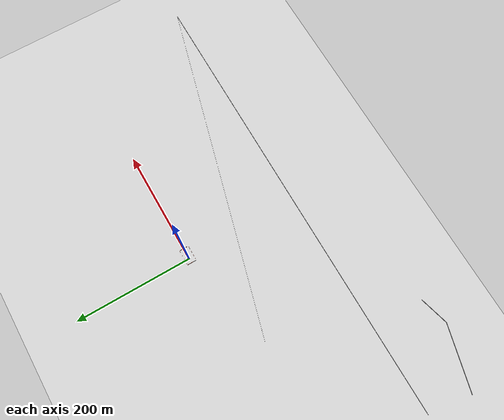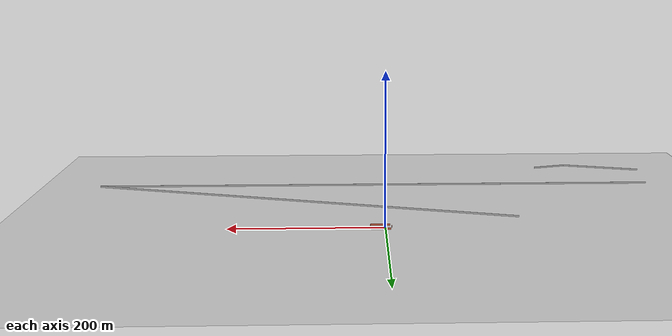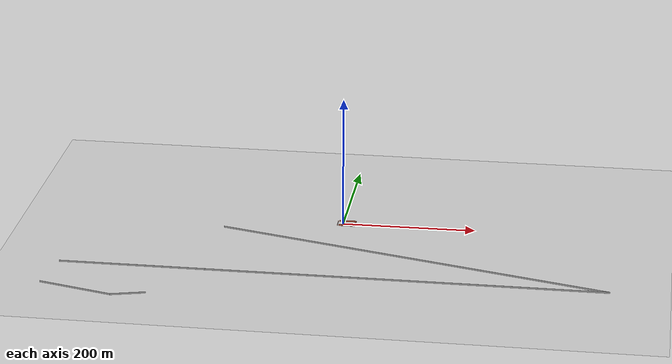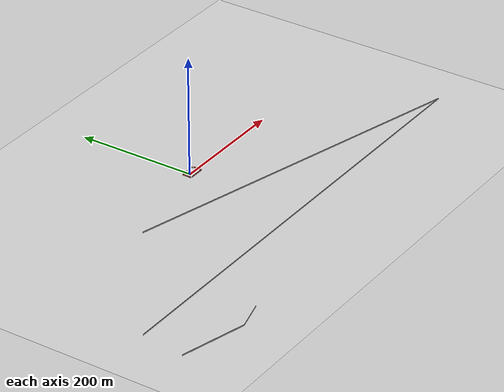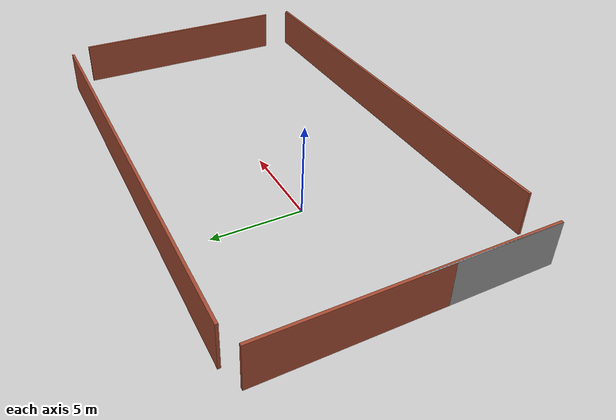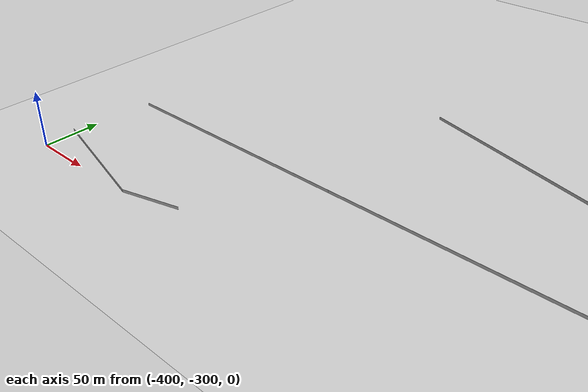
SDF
<sdf version="1.6">
 <world name="default">
  <light name="sun" type="directional">
   <pose>0 0 10 0 -0 0</pose>
   <diffuse>0.8 0.8 0.8 1</diffuse>
   <specular>0.2 0.2 0.2 1</specular>
   <attenuation>
    <range>1000</range>
    <constant>0.9</constant>
    <linear>0.01</linear>
    <quadratic>0.001</quadratic>
   </attenuation>
   <direction>-0.5 0.1 -0.9</direction>
  </light>
  <model name="ground_plane">
   <static>1</static>
   <link name="link">
    <collision name="collision">
     <geometry><plane><normal>0 0 1</normal><size>100 100</size></plane></geometry>
     <surface>
      <contact><collide_bitmask>65535</collide_bitmask></contact>
      <friction><ode><mu>100</mu><mu2>50</mu2></ode></friction>
     </surface>
    </collision>
    <visual name="visual">
     <cast_shadows>0</cast_shadows>
     <geometry><plane><normal>0 0 1</normal><size>100 100</size></plane></geometry>
     <material>
      <script><uri>file://media/materials/scripts/gazebo.material</uri><name>Gazebo/Grey</name></script>
     </material>
    </visual>
   </link>
  </model>
  <gravity>0 0 -9.8</gravity>
  <magnetic_field>6e-06 2.3e-05 -4.2e-05</magnetic_field>
  <atmosphere type="adiabatic"/>
  <physics name="default_physics" default="0" type="ode">
   <max_step_size>0.001</max_step_size>
   <real_time_factor>1</real_time_factor>
   <real_time_update_rate>1000</real_time_update_rate>
  </physics>
  <scene><ambient>0.4 0.4 0.4 1</ambient><background>0.7 0.7 0.7 1</background><shadows>1</shadows></scene>
  <spherical_coordinates>
   <surface_model>EARTH_WGS84</surface_model>
   <latitude_deg>0</latitude_deg>
   <longitude_deg>0</longitude_deg>
   <elevation>0</elevation>
   <heading_deg>0</heading_deg>
  </spherical_coordinates>
  <model name="world">
   <pose>2.75366 -146.066 0 0 -0 0</pose>
   <link name="Wall_11">
    <collision name="Wall_11_Collision">
     <geometry><box><size>7.5 0.15 2.5</size></box></geometry>
     <pose>0 0 1.25 0 -0 0</pose>
    </collision>
    <visual name="Wall_11_Visual">
     <pose>0 0 1.25 0 -0 0</pose>
     <geometry><box><size>7.5 0.15 2.5</size></box></geometry>
     <material>
      <script><uri>file://media/materials/scripts/gazebo.material</uri><name>Gazebo/Grey</name></script>
      <ambient>1 1 1 1</ambient>
     </material>
     <meta><layer>0</layer></meta>
    </visual>
    <pose>-11.0147 141.291 0 0 -0 -1.5708</pose>
   </link>
   <link name="Wall_12">
    <collision name="Wall_12_Collision">
     <geometry><box><size>15.5 0.15 2.5</size></box></geometry>
     <pose>0 0 1.25 0 -0 0</pose>
    </collision>
    <visual name="Wall_12_Visual">
     <pose>0 0 1.25 0 -0 0</pose>
     <geometry><box><size>15.5 0.15 2.5</size></box></geometry>
     <material>
      <script><uri>file://media/materials/scripts/gazebo.material</uri><name>Gazebo/Bricks</name></script>
      <ambient>1 1 1 1</ambient>
     </material>
     <meta><layer>0</layer></meta>
    </visual>
    <pose>-11.0147 145.291 0 0 -0 1.5708</pose>
   </link>
   <link name="Wall_15">
    <collision name="Wall_15_Collision">
     <geometry><box><size>25 0.15 2.5</size></box></geometry>
     <pose>0 0 1.25 0 -0 0</pose>
    </collision>
    <visual name="Wall_15_Visual">
     <pose>0 0 1.25 0 -0 0</pose>
     <geometry><box><size>25 0.15 2.5</size></box></geometry>
     <material>
      <script><uri>file://media/materials/scripts/gazebo.material</uri><name>Gazebo/Bricks</name></script>
      <ambient>1 1 1 1</ambient>
     </material>
     <meta><layer>0</layer></meta>
    </visual>
    <pose>3.6079 137.356 0 0 -0 0</pose>
   </link>
   <link name="Wall_17">
    <collision name="Wall_17_Collision">
     <geometry><box><size>13.25 0.15 2.5</size></box></geometry>
     <pose>0 0 1.25 0 -0 0</pose>
    </collision>
    <visual name="Wall_17_Visual">
     <pose>0 0 1.25 0 -0 0</pose>
     <geometry><box><size>13.25 0.15 2.5</size></box></geometry>
     <material>
      <script><uri>file://media/materials/scripts/gazebo.material</uri><name>Gazebo/Bricks</name></script>
      <ambient>1 1 1 1</ambient>
     </material>
     <meta><layer>0</layer></meta>
    </visual>
    <pose>16.172 145.661 0 0 -0 1.5708</pose>
   </link>
   <link name="Wall_19">
    <collision name="Wall_19_Collision">
     <geometry><box><size>25.25 0.15 2.5</size></box></geometry>
     <pose>0 0 1.25 0 -0 0</pose>
    </collision>
    <visual name="Wall_19_Visual">
     <pose>0 0 1.25 0 -0 0</pose>
     <geometry><box><size>25.25 0.15 2.5</size></box></geometry>
     <material>
      <script><uri>file://media/materials/scripts/gazebo.material</uri><name>Gazebo/Bricks</name></script>
      <ambient>1 1 1 1</ambient>
     </material>
     <meta><layer>0</layer></meta>
    </visual>
    <pose>2.8253 153.451 0 0 -0 0</pose>
   </link>
   <link name="Wall_3">
    <collision name="Wall_3_Collision">
     <geometry><box><size>113.5 0.15 2.5</size></box></geometry>
     <pose>0 0 1.25 0 -0 0</pose>
    </collision>
    <visual name="Wall_3_Visual">
     <pose>0 0 1.25 0 -0 0</pose>
     <geometry><box><size>113.5 0.15 2.5</size></box></geometry>
     <material>
      <script><uri>file://media/materials/scripts/gazebo.material</uri><name>Gazebo/Grey</name></script>
      <ambient>1 1 1 1</ambient>
     </material>
     <meta><layer>0</layer></meta>
    </visual>
    <pose>-352.363 -138.765 0 0 -0 -0.261799</pose>
   </link>
   <link name="Wall_4">
    <collision name="Wall_4_Collision">
     <geometry><box><size>51.25 0.15 2.5</size></box></geometry>
     <pose>0 0 1.25 0 -0 0</pose>
    </collision>
    <visual name="Wall_4_Visual">
     <pose>0 0 1.25 0 -0 0</pose>
     <geometry><box><size>51.25 0.15 2.5</size></box></geometry>
     <material>
      <script><uri>file://media/materials/scripts/gazebo.material</uri><name>Gazebo/Grey</name></script>
      <ambient>1 1 1 1</ambient>
     </material>
     <meta><layer>0</layer></meta>
    </visual>
    <pose>-272.939 -146.821 0 0 -0 0.261799</pose>
   </link>
   <link name="Wall_6">
    <collision name="Wall_6_Collision">
     <geometry><box><size>217 0.15 2.5</size></box></geometry>
     <pose>0 0 1.25 0 -0 0</pose>
    </collision>
    <visual name="Wall_6_Visual">
     <pose>0 0 1.25 0 -0 0</pose>
     <geometry><box><size>217 0.15 2.5</size></box></geometry>
     <material>
      <script><uri>file://media/materials/scripts/gazebo.material</uri><name>Gazebo/Grey</name></script>
      <ambient>1 1 1 1</ambient>
     </material>
     <meta><layer>0</layer></meta>
    </visual>
    <pose>-288.668 -49.9996 0 0 -0 0</pose>
   </link>
   <link name="Wall_7">
    <collision name="Wall_7_Collision">
     <geometry><box><size>587.5 0.15 2.5</size></box></geometry>
     <pose>0 0 1.25 0 -0 0</pose>
    </collision>
    <visual name="Wall_7_Visual">
     <pose>0 0 1.25 0 -0 0</pose>
     <geometry><box><size>587.5 0.15 2.5</size></box></geometry>
     <material>
      <script><uri>file://media/materials/scripts/gazebo.material</uri><name>Gazebo/Grey</name></script>
      <ambient>1 1 1 1</ambient>
     </material>
     <meta><layer>0</layer></meta>
    </visual>
    <pose>113.432 -49.9996 0 0 -0 0</pose>
   </link>
   <link name="Wall_8">
    <collision name="Wall_8_Collision">
     <geometry><box><size>607.75 0.15 2.5</size></box></geometry>
     <pose>0 0 1.25 0 -0 0</pose>
    </collision>
    <visual name="Wall_8_Visual">
     <pose>0 0 1.25 0 -0 0</pose>
     <geometry><box><size>607.75 0.15 2.5</size></box></geometry>
     <material>
      <script><uri>file://media/materials/scripts/gazebo.material</uri><name>Gazebo/Grey</name></script>
      <ambient>1 1 1 1</ambient>
     </material>
     <meta><layer>0</layer></meta>
    </visual>
    <pose>113.658 28.6296 0 0 -0 2.87979</pose>
   </link>
   <static>1</static>
  </model>
 </world>
</sdf>
